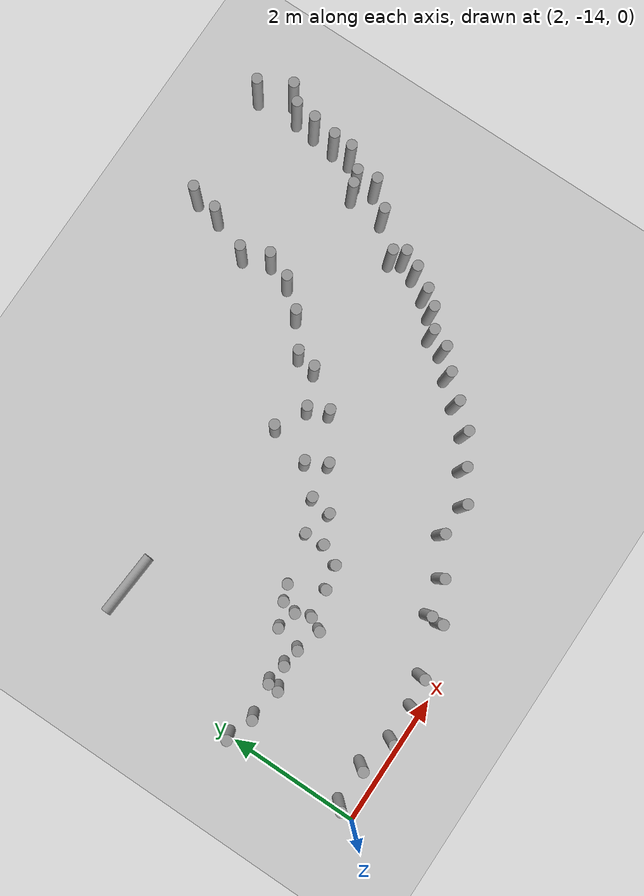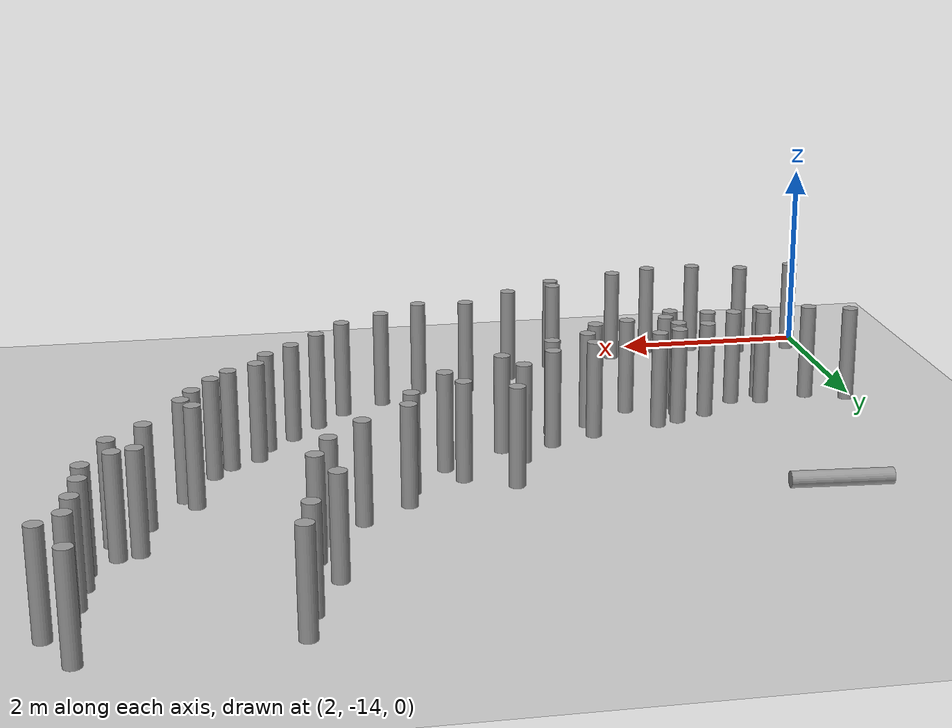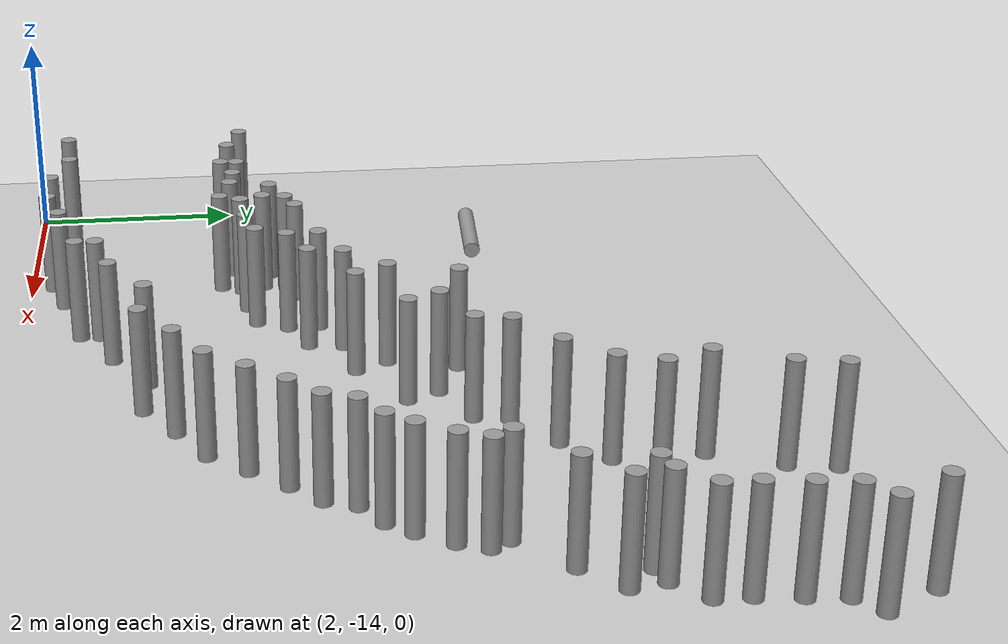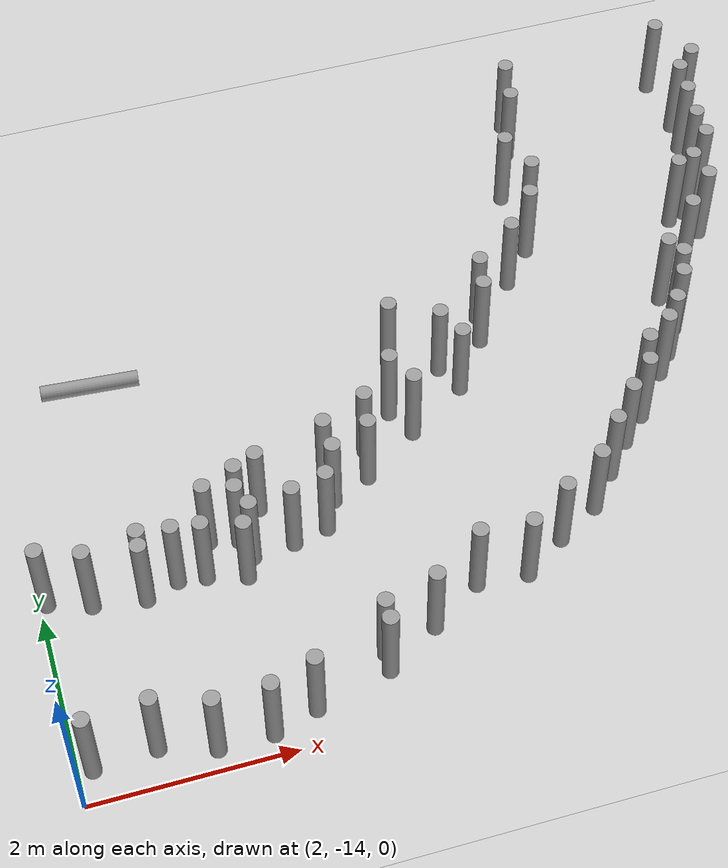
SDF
<sdf version="1.6">
 <world name="default">
  <model name="ground_plane">
   <static>1</static>
   <link name="link">
    <collision name="collision">
     <geometry><plane><normal>0 0 1</normal><size>100 100</size></plane></geometry>
     <surface><friction><ode><mu>100</mu><mu2>50</mu2></ode></friction></surface>
    </collision>
    <visual name="visual">
     <cast_shadows>0</cast_shadows>
     <geometry><plane><normal>0 0 1</normal><size>100 100</size></plane></geometry>
     <material>
      <script><uri>file://media/materials/scripts/gazebo.material</uri><name>Gazebo/Grey</name></script>
     </material>
    </visual>
   </link>
  </model>
  <model name="unit_cylinder_0_clone_clone_26">
   <pose>8.18981 -7.13687 0.49999 0 -0 0.006208</pose>
   <link name="link">
    <inertial>
     <mass>1</mass>
     <inertia><ixx>0.145833</ixx><ixy>0</ixy><ixz>0</ixz><iyy>0.145833</iyy><iyz>0</iyz><izz>0.125</izz></inertia>
    </inertial>
    <collision name="collision">
     <geometry><cylinder><radius>0.0811363</radius><length>1</length></cylinder></geometry>
    </collision>
    <visual name="visual">
     <geometry><cylinder><radius>0.0811363</radius><length>1</length></cylinder></geometry>
     <material>
      <script><name>Gazebo/Grey</name><uri>file://media/materials/scripts/gazebo.material</uri></script>
     </material>
    </visual>
   </link>
  </model>
  <model name="unit_cylinder_0_clone_clone_27">
   <pose>8.10835 -7.5553 0.49999 0 -0 0.006155</pose>
   <link name="link">
    <inertial>
     <mass>1</mass>
     <inertia><ixx>0.145833</ixx><ixy>0</ixy><ixz>0</ixz><iyy>0.145833</iyy><iyz>0</iyz><izz>0.125</izz></inertia>
    </inertial>
    <collision name="collision">
     <geometry><cylinder><radius>0.0811363</radius><length>1</length></cylinder></geometry>
    </collision>
    <visual name="visual">
     <geometry><cylinder><radius>0.0811363</radius><length>1</length></cylinder></geometry>
     <material>
      <script><name>Gazebo/Grey</name><uri>file://media/materials/scripts/gazebo.material</uri></script>
     </material>
    </visual>
   </link>
  </model>
  <model name="unit_cylinder_0_clone_clone_28">
   <pose>7.84183 -8.16999 0.49999 0 -0 0.006186</pose>
   <link name="link">
    <inertial>
     <mass>1</mass>
     <inertia><ixx>0.145833</ixx><ixy>0</ixy><ixz>0</ixz><iyy>0.145833</iyy><iyz>0</iyz><izz>0.125</izz></inertia>
    </inertial>
    <collision name="collision">
     <geometry><cylinder><radius>0.0811363</radius><length>1</length></cylinder></geometry>
    </collision>
    <visual name="visual">
     <geometry><cylinder><radius>0.0811363</radius><length>1</length></cylinder></geometry>
     <material>
      <script><name>Gazebo/Grey</name><uri>file://media/materials/scripts/gazebo.material</uri></script>
     </material>
    </visual>
   </link>
  </model>
  <model name="unit_cylinder_0_clone_clone_29">
   <pose>8.00004 -8.58037 0.499993 0 0 -0.000846</pose>
   <link name="link">
    <inertial>
     <mass>1</mass>
     <inertia><ixx>0.145833</ixx><ixy>0</ixy><ixz>0</ixz><iyy>0.145833</iyy><iyz>0</iyz><izz>0.125</izz></inertia>
    </inertial>
    <collision name="collision">
     <geometry><cylinder><radius>0.0811363</radius><length>1</length></cylinder></geometry>
    </collision>
    <visual name="visual">
     <geometry><cylinder><radius>0.0811363</radius><length>1</length></cylinder></geometry>
     <material>
      <script><name>Gazebo/Grey</name><uri>file://media/materials/scripts/gazebo.material</uri></script>
     </material>
    </visual>
   </link>
  </model>
  <model name="unit_cylinder_0_clone_clone_30">
   <pose>7.85394 -8.96392 0.499995 0 -0 0.002711</pose>
   <link name="link">
    <inertial>
     <mass>1</mass>
     <inertia><ixx>0.145833</ixx><ixy>0</ixy><ixz>0</ixz><iyy>0.145833</iyy><iyz>0</iyz><izz>0.125</izz></inertia>
    </inertial>
    <collision name="collision">
     <geometry><cylinder><radius>0.0811363</radius><length>1</length></cylinder></geometry>
    </collision>
    <visual name="visual">
     <geometry><cylinder><radius>0.0811363</radius><length>1</length></cylinder></geometry>
     <material>
      <script><name>Gazebo/Grey</name><uri>file://media/materials/scripts/gazebo.material</uri></script>
     </material>
    </visual>
   </link>
  </model>
  <model name="unit_cylinder_0_clone_clone_31">
   <pose>7.52159 -9.342 0.49999 0 -0 0.005889</pose>
   <link name="link">
    <inertial>
     <mass>1</mass>
     <inertia><ixx>0.145833</ixx><ixy>0</ixy><ixz>0</ixz><iyy>0.145833</iyy><iyz>0</iyz><izz>0.125</izz></inertia>
    </inertial>
    <collision name="collision">
     <geometry><cylinder><radius>0.0811363</radius><length>1</length></cylinder></geometry>
    </collision>
    <visual name="visual">
     <geometry><cylinder><radius>0.0811363</radius><length>1</length></cylinder></geometry>
     <material>
      <script><name>Gazebo/Grey</name><uri>file://media/materials/scripts/gazebo.material</uri></script>
     </material>
    </visual>
   </link>
  </model>
  <model name="unit_cylinder_0_clone_clone_32">
   <pose>5.98452 -10.9288 0.5 0 -0 0.005995</pose>
   <link name="link">
    <inertial>
     <mass>1</mass>
     <inertia><ixx>0.145833</ixx><ixy>0</ixy><ixz>0</ixz><iyy>0.145833</iyy><iyz>0</iyz><izz>0.125</izz></inertia>
    </inertial>
    <collision name="collision">
     <geometry><cylinder><radius>0.0811363</radius><length>1</length></cylinder></geometry>
    </collision>
    <visual name="visual">
     <geometry><cylinder><radius>0.0811363</radius><length>1</length></cylinder></geometry>
     <material>
      <script><name>Gazebo/Grey</name><uri>file://media/materials/scripts/gazebo.material</uri></script>
     </material>
    </visual>
   </link>
  </model>
  <model name="unit_cylinder_0_clone_clone_33">
   <pose>3.00714 -11.919 0.499993 0 -0 0.003414</pose>
   <link name="link">
    <inertial>
     <mass>1</mass>
     <inertia><ixx>0.145833</ixx><ixy>0</ixy><ixz>0</ixz><iyy>0.145833</iyy><iyz>0</iyz><izz>0.125</izz></inertia>
    </inertial>
    <collision name="collision">
     <geometry><cylinder><radius>0.0811363</radius><length>1</length></cylinder></geometry>
    </collision>
    <visual name="visual">
     <geometry><cylinder><radius>0.0811363</radius><length>1</length></cylinder></geometry>
     <material>
      <script><name>Gazebo/Grey</name><uri>file://media/materials/scripts/gazebo.material</uri></script>
     </material>
    </visual>
   </link>
  </model>
  <model name="unit_cylinder_0_clone_clone_41">
   <pose>7.06387 -9.69066 0.5 0 -0 0.005546</pose>
   <link name="link">
    <inertial>
     <mass>1</mass>
     <inertia><ixx>0.145833</ixx><ixy>0</ixy><ixz>0</ixz><iyy>0.145833</iyy><iyz>0</iyz><izz>0.125</izz></inertia>
    </inertial>
    <collision name="collision">
     <geometry><cylinder><radius>0.0811363</radius><length>1</length></cylinder></geometry>
    </collision>
    <visual name="visual">
     <geometry><cylinder><radius>0.0811363</radius><length>1</length></cylinder></geometry>
     <material>
      <script><name>Gazebo/Grey</name><uri>file://media/materials/scripts/gazebo.material</uri></script>
     </material>
    </visual>
   </link>
  </model>
  <model name="unit_cylinder_0_clone_clone_42">
   <pose>7 -9.99997 0.499996 0 -0 0.00195</pose>
   <link name="link">
    <inertial>
     <mass>1</mass>
     <inertia><ixx>0.145833</ixx><ixy>0</ixy><ixz>0</ixz><iyy>0.145833</iyy><iyz>0</iyz><izz>0.125</izz></inertia>
    </inertial>
    <collision name="collision">
     <geometry><cylinder><radius>0.0811363</radius><length>1</length></cylinder></geometry>
    </collision>
    <visual name="visual">
     <geometry><cylinder><radius>0.0811363</radius><length>1</length></cylinder></geometry>
     <material>
      <script><name>Gazebo/Grey</name><uri>file://media/materials/scripts/gazebo.material</uri></script>
     </material>
    </visual>
   </link>
  </model>
  <model name="unit_cylinder_0_clone_clone_43">
   <pose>6.00003 -9.99999 0.499993 0 0 -0.000515</pose>
   <link name="link">
    <inertial>
     <mass>1</mass>
     <inertia><ixx>0.145833</ixx><ixy>0</ixy><ixz>0</ixz><iyy>0.145833</iyy><iyz>0</iyz><izz>0.125</izz></inertia>
    </inertial>
    <collision name="collision">
     <geometry><cylinder><radius>0.0811363</radius><length>1</length></cylinder></geometry>
    </collision>
    <visual name="visual">
     <geometry><cylinder><radius>0.0811363</radius><length>1</length></cylinder></geometry>
     <material>
      <script><name>Gazebo/Grey</name><uri>file://media/materials/scripts/gazebo.material</uri></script>
     </material>
    </visual>
   </link>
  </model>
  <model name="unit_cylinder_0_clone_clone_44">
   <pose>6.61182 -10.5251 0.499996 0 -0 0.002743</pose>
   <link name="link">
    <inertial>
     <mass>1</mass>
     <inertia><ixx>0.145833</ixx><ixy>0</ixy><ixz>0</ixz><iyy>0.145833</iyy><iyz>0</iyz><izz>0.125</izz></inertia>
    </inertial>
    <collision name="collision">
     <geometry><cylinder><radius>0.0811363</radius><length>1</length></cylinder></geometry>
    </collision>
    <visual name="visual">
     <geometry><cylinder><radius>0.0811363</radius><length>1</length></cylinder></geometry>
     <material>
      <script><name>Gazebo/Grey</name><uri>file://media/materials/scripts/gazebo.material</uri></script>
     </material>
    </visual>
   </link>
  </model>
  <model name="unit_cylinder_0_clone_clone_45">
   <pose>6.47324 -10.2323 0.49999 0 -0 0.005281</pose>
   <link name="link">
    <inertial>
     <mass>1</mass>
     <inertia><ixx>0.145833</ixx><ixy>0</ixy><ixz>0</ixz><iyy>0.145833</iyy><iyz>0</iyz><izz>0.125</izz></inertia>
    </inertial>
    <collision name="collision">
     <geometry><cylinder><radius>0.0811363</radius><length>1</length></cylinder></geometry>
    </collision>
    <visual name="visual">
     <geometry><cylinder><radius>0.0811363</radius><length>1</length></cylinder></geometry>
     <material>
      <script><name>Gazebo/Grey</name><uri>file://media/materials/scripts/gazebo.material</uri></script>
     </material>
    </visual>
   </link>
  </model>
  <model name="unit_cylinder_0_clone_clone_46">
   <pose>5.82302 -10.6278 0.5 0 -0 0.005283</pose>
   <link name="link">
    <inertial>
     <mass>1</mass>
     <inertia><ixx>0.145833</ixx><ixy>0</ixy><ixz>0</ixz><iyy>0.145833</iyy><iyz>0</iyz><izz>0.125</izz></inertia>
    </inertial>
    <collision name="collision">
     <geometry><cylinder><radius>0.0811363</radius><length>1</length></cylinder></geometry>
    </collision>
    <visual name="visual">
     <geometry><cylinder><radius>0.0811363</radius><length>1</length></cylinder></geometry>
     <material>
      <script><name>Gazebo/Grey</name><uri>file://media/materials/scripts/gazebo.material</uri></script>
     </material>
    </visual>
   </link>
  </model>
  <model name="unit_cylinder_0_clone_clone_47">
   <pose>5.45799 -10.9999 0.5 0 -0 0.005037</pose>
   <link name="link">
    <inertial>
     <mass>1</mass>
     <inertia><ixx>0.145833</ixx><ixy>0</ixy><ixz>0</ixz><iyy>0.145833</iyy><iyz>0</iyz><izz>0.125</izz></inertia>
    </inertial>
    <collision name="collision">
     <geometry><cylinder><radius>0.0811363</radius><length>1</length></cylinder></geometry>
    </collision>
    <visual name="visual">
     <geometry><cylinder><radius>0.0811363</radius><length>1</length></cylinder></geometry>
     <material>
      <script><name>Gazebo/Grey</name><uri>file://media/materials/scripts/gazebo.material</uri></script>
     </material>
    </visual>
   </link>
  </model>
  <model name="unit_cylinder_0_clone_clone_48">
   <pose>5.40133 -11.3229 0.49999 0 -0 0.005121</pose>
   <link name="link">
    <inertial>
     <mass>1</mass>
     <inertia><ixx>0.145833</ixx><ixy>0</ixy><ixz>0</ixz><iyy>0.145833</iyy><iyz>0</iyz><izz>0.125</izz></inertia>
    </inertial>
    <collision name="collision">
     <geometry><cylinder><radius>0.0811363</radius><length>1</length></cylinder></geometry>
    </collision>
    <visual name="visual">
     <geometry><cylinder><radius>0.0811363</radius><length>1</length></cylinder></geometry>
     <material>
      <script><name>Gazebo/Grey</name><uri>file://media/materials/scripts/gazebo.material</uri></script>
     </material>
    </visual>
   </link>
  </model>
  <model name="unit_cylinder_0_clone_clone_49">
   <pose>4.99029 -11.1989 0.499993 0 -0 0.002755</pose>
   <link name="link">
    <inertial>
     <mass>1</mass>
     <inertia><ixx>0.145833</ixx><ixy>0</ixy><ixz>0</ixz><iyy>0.145833</iyy><iyz>0</iyz><izz>0.125</izz></inertia>
    </inertial>
    <collision name="collision">
     <geometry><cylinder><radius>0.0811363</radius><length>1</length></cylinder></geometry>
    </collision>
    <visual name="visual">
     <geometry><cylinder><radius>0.0811363</radius><length>1</length></cylinder></geometry>
     <material>
      <script><name>Gazebo/Grey</name><uri>file://media/materials/scripts/gazebo.material</uri></script>
     </material>
    </visual>
   </link>
  </model>
  <model name="unit_cylinder_0_clone_clone_50">
   <pose>5.00002 -11.4951 0.499997 0 -0 0.001776</pose>
   <link name="link">
    <inertial>
     <mass>1</mass>
     <inertia><ixx>0.145833</ixx><ixy>0</ixy><ixz>0</ixz><iyy>0.145833</iyy><iyz>0</iyz><izz>0.125</izz></inertia>
    </inertial>
    <collision name="collision">
     <geometry><cylinder><radius>0.0811363</radius><length>1</length></cylinder></geometry>
    </collision>
    <visual name="visual">
     <geometry><cylinder><radius>0.0811363</radius><length>1</length></cylinder></geometry>
     <material>
      <script><name>Gazebo/Grey</name><uri>file://media/materials/scripts/gazebo.material</uri></script>
     </material>
    </visual>
   </link>
  </model>
  <model name="unit_cylinder_0_clone_clone_51">
   <pose>3.321 -11.9637 0.499997 0 -0 0.003017</pose>
   <link name="link">
    <inertial>
     <mass>1</mass>
     <inertia><ixx>0.145833</ixx><ixy>0</ixy><ixz>0</ixz><iyy>0.145833</iyy><iyz>0</iyz><izz>0.125</izz></inertia>
    </inertial>
    <collision name="collision">
     <geometry><cylinder><radius>0.0811363</radius><length>1</length></cylinder></geometry>
    </collision>
    <visual name="visual">
     <geometry><cylinder><radius>0.0811363</radius><length>1</length></cylinder></geometry>
     <material>
      <script><name>Gazebo/Grey</name><uri>file://media/materials/scripts/gazebo.material</uri></script>
     </material>
    </visual>
   </link>
  </model>
  <model name="unit_cylinder_0_clone_clone_52">
   <pose>2.99309 -12.0807 0.499995 0 -0 0.001645</pose>
   <link name="link">
    <inertial>
     <mass>1</mass>
     <inertia><ixx>0.145833</ixx><ixy>0</ixy><ixz>0</ixz><iyy>0.145833</iyy><iyz>0</iyz><izz>0.125</izz></inertia>
    </inertial>
    <collision name="collision">
     <geometry><cylinder><radius>0.0811363</radius><length>1</length></cylinder></geometry>
    </collision>
    <visual name="visual">
     <geometry><cylinder><radius>0.0811363</radius><length>1</length></cylinder></geometry>
     <material>
      <script><name>Gazebo/Grey</name><uri>file://media/materials/scripts/gazebo.material</uri></script>
     </material>
    </visual>
   </link>
  </model>
  <model name="unit_cylinder_0_clone_clone_53">
   <pose>3.5965 -11.9999 0.49999 0 -0 0.005003</pose>
   <link name="link">
    <inertial>
     <mass>1</mass>
     <inertia><ixx>0.145833</ixx><ixy>0</ixy><ixz>0</ixz><iyy>0.145833</iyy><iyz>0</iyz><izz>0.125</izz></inertia>
    </inertial>
    <collision name="collision">
     <geometry><cylinder><radius>0.0811363</radius><length>1</length></cylinder></geometry>
    </collision>
    <visual name="visual">
     <geometry><cylinder><radius>0.0811363</radius><length>1</length></cylinder></geometry>
     <material>
      <script><name>Gazebo/Grey</name><uri>file://media/materials/scripts/gazebo.material</uri></script>
     </material>
    </visual>
   </link>
  </model>
  <model name="unit_cylinder_0_clone_clone_54">
   <pose>3.70659 -11.6139 0.500745 -0.001533 0.00934 1.94859</pose>
   <link name="link">
    <inertial>
     <mass>1</mass>
     <inertia><ixx>0.145833</ixx><ixy>0</ixy><ixz>0</ixz><iyy>0.145833</iyy><iyz>0</iyz><izz>0.125</izz></inertia>
    </inertial>
    <collision name="collision">
     <geometry><cylinder><radius>0.0811363</radius><length>1</length></cylinder></geometry>
    </collision>
    <visual name="visual">
     <geometry><cylinder><radius>0.0811363</radius><length>1</length></cylinder></geometry>
     <material>
      <script><name>Gazebo/Grey</name><uri>file://media/materials/scripts/gazebo.material</uri></script>
     </material>
    </visual>
   </link>
  </model>
  <model name="unit_cylinder_0_clone_clone_55">
   <pose>2.96637 -9.46984 0.081136 1.5708 -0.619525 1.49835</pose>
   <link name="link">
    <inertial>
     <mass>1</mass>
     <inertia><ixx>0.145833</ixx><ixy>0</ixy><ixz>0</ixz><iyy>0.145833</iyy><iyz>0</iyz><izz>0.125</izz></inertia>
    </inertial>
    <collision name="collision">
     <geometry><cylinder><radius>0.0811363</radius><length>1</length></cylinder></geometry>
    </collision>
    <visual name="visual">
     <geometry><cylinder><radius>0.0811363</radius><length>1</length></cylinder></geometry>
     <material>
      <script><name>Gazebo/Grey</name><uri>file://media/materials/scripts/gazebo.material</uri></script>
     </material>
    </visual>
   </link>
  </model>
  <model name="unit_cylinder_0_clone_clone_56">
   <pose>3.99631 -11.6862 0.499995 0 -0 0.000361</pose>
   <link name="link">
    <inertial>
     <mass>1</mass>
     <inertia><ixx>0.145833</ixx><ixy>0</ixy><ixz>0</ixz><iyy>0.145833</iyy><iyz>0</iyz><izz>0.125</izz></inertia>
    </inertial>
    <collision name="collision">
     <geometry><cylinder><radius>0.0811363</radius><length>1</length></cylinder></geometry>
    </collision>
    <visual name="visual">
     <geometry><cylinder><radius>0.0811363</radius><length>1</length></cylinder></geometry>
     <material>
      <script><name>Gazebo/Grey</name><uri>file://media/materials/scripts/gazebo.material</uri></script>
     </material>
    </visual>
   </link>
  </model>
  <model name="unit_cylinder_0_clone_clone_57">
   <pose>4.04002 -11.4696 0.5 0 -0 0.004905</pose>
   <link name="link">
    <inertial>
     <mass>1</mass>
     <inertia><ixx>0.145833</ixx><ixy>0</ixy><ixz>0</ixz><iyy>0.145833</iyy><iyz>0</iyz><izz>0.125</izz></inertia>
    </inertial>
    <collision name="collision">
     <geometry><cylinder><radius>0.0811363</radius><length>1</length></cylinder></geometry>
    </collision>
    <visual name="visual">
     <geometry><cylinder><radius>0.0811363</radius><length>1</length></cylinder></geometry>
     <material>
      <script><name>Gazebo/Grey</name><uri>file://media/materials/scripts/gazebo.material</uri></script>
     </material>
    </visual>
   </link>
  </model>
  <model name="unit_cylinder_0_clone_clone_58">
   <pose>4.07827 -11.9071 0.49999 0 0 -0.015454</pose>
   <link name="link">
    <inertial>
     <mass>1</mass>
     <inertia><ixx>0.145833</ixx><ixy>0</ixy><ixz>0</ixz><iyy>0.145833</iyy><iyz>0</iyz><izz>0.125</izz></inertia>
    </inertial>
    <collision name="collision">
     <geometry><cylinder><radius>0.0811363</radius><length>1</length></cylinder></geometry>
    </collision>
    <visual name="visual">
     <geometry><cylinder><radius>0.0811363</radius><length>1</length></cylinder></geometry>
     <material>
      <script><name>Gazebo/Grey</name><uri>file://media/materials/scripts/gazebo.material</uri></script>
     </material>
    </visual>
   </link>
  </model>
  <model name="unit_cylinder_0_clone_clone_59">
   <pose>4.27003 -11.3814 0.499996 0 -0 0.003802</pose>
   <link name="link">
    <inertial>
     <mass>1</mass>
     <inertia><ixx>0.145833</ixx><ixy>0</ixy><ixz>0</ixz><iyy>0.145833</iyy><iyz>0</iyz><izz>0.125</izz></inertia>
    </inertial>
    <collision name="collision">
     <geometry><cylinder><radius>0.0811363</radius><length>1</length></cylinder></geometry>
    </collision>
    <visual name="visual">
     <geometry><cylinder><radius>0.0811363</radius><length>1</length></cylinder></geometry>
     <material>
      <script><name>Gazebo/Grey</name><uri>file://media/materials/scripts/gazebo.material</uri></script>
     </material>
    </visual>
   </link>
  </model>
  <model name="unit_cylinder_0_clone_clone_60">
   <pose>3.97813 -12.106 0.5 0 -0 0.037306</pose>
   <link name="link">
    <inertial>
     <mass>1</mass>
     <inertia><ixx>0.145833</ixx><ixy>0</ixy><ixz>0</ixz><iyy>0.145833</iyy><iyz>0</iyz><izz>0.125</izz></inertia>
    </inertial>
    <collision name="collision">
     <geometry><cylinder><radius>0.0811363</radius><length>1</length></cylinder></geometry>
    </collision>
    <visual name="visual">
     <geometry><cylinder><radius>0.0811363</radius><length>1</length></cylinder></geometry>
     <material>
      <script><name>Gazebo/Grey</name><uri>file://media/materials/scripts/gazebo.material</uri></script>
     </material>
    </visual>
   </link>
  </model>
  <model name="unit_cylinder_0_clone_clone_61">
   <pose>4.50174 -11.8652 0.5 0 -0 0.00696</pose>
   <link name="link">
    <inertial>
     <mass>1</mass>
     <inertia><ixx>0.145833</ixx><ixy>0</ixy><ixz>0</ixz><iyy>0.145833</iyy><iyz>0</iyz><izz>0.125</izz></inertia>
    </inertial>
    <collision name="collision">
     <geometry><cylinder><radius>0.0811363</radius><length>1</length></cylinder></geometry>
    </collision>
    <visual name="visual">
     <geometry><cylinder><radius>0.0811363</radius><length>1</length></cylinder></geometry>
     <material>
      <script><name>Gazebo/Grey</name><uri>file://media/materials/scripts/gazebo.material</uri></script>
     </material>
    </visual>
   </link>
  </model>
  <model name="unit_cylinder_0_clone_clone_62">
   <pose>4.85468 -11.787 0.5 0 -0 0.006984</pose>
   <link name="link">
    <inertial>
     <mass>1</mass>
     <inertia><ixx>0.145833</ixx><ixy>0</ixy><ixz>0</ixz><iyy>0.145833</iyy><iyz>0</iyz><izz>0.125</izz></inertia>
    </inertial>
    <collision name="collision">
     <geometry><cylinder><radius>0.0811363</radius><length>1</length></cylinder></geometry>
    </collision>
    <visual name="visual">
     <geometry><cylinder><radius>0.0811363</radius><length>1</length></cylinder></geometry>
     <material>
      <script><name>Gazebo/Grey</name><uri>file://media/materials/scripts/gazebo.material</uri></script>
     </material>
    </visual>
   </link>
  </model>
  <model name="unit_cylinder_0_clone_clone_68">
   <pose>2.068 -11.8686 0.499993 0 -0 0.004302</pose>
   <link name="link">
    <inertial>
     <mass>1</mass>
     <inertia><ixx>0.145833</ixx><ixy>0</ixy><ixz>0</ixz><iyy>0.145833</iyy><iyz>0</iyz><izz>0.125</izz></inertia>
    </inertial>
    <collision name="collision">
     <geometry><cylinder><radius>0.0811363</radius><length>1</length></cylinder></geometry>
    </collision>
    <visual name="visual">
     <geometry><cylinder><radius>0.0811363</radius><length>1</length></cylinder></geometry>
     <material>
      <script><name>Gazebo/Grey</name><uri>file://media/materials/scripts/gazebo.material</uri></script>
     </material>
    </visual>
   </link>
  </model>
  <model name="unit_cylinder_0_clone_clone_69">
   <pose>2.48046 -12.0053 0.499993 0 -0 0.002722</pose>
   <link name="link">
    <inertial>
     <mass>1</mass>
     <inertia><ixx>0.145833</ixx><ixy>0</ixy><ixz>0</ixz><iyy>0.145833</iyy><iyz>0</iyz><izz>0.125</izz></inertia>
    </inertial>
    <collision name="collision">
     <geometry><cylinder><radius>0.0811363</radius><length>1</length></cylinder></geometry>
    </collision>
    <visual name="visual">
     <geometry><cylinder><radius>0.0811363</radius><length>1</length></cylinder></geometry>
     <material>
      <script><name>Gazebo/Grey</name><uri>file://media/materials/scripts/gazebo.material</uri></script>
     </material>
    </visual>
   </link>
  </model>
  <model name="unit_cylinder_0_clone_clone_125">
   <pose>9.95386 -8.37196 0.49999 0 -0 0.005921</pose>
   <link name="link">
    <inertial>
     <mass>1</mass>
     <inertia><ixx>0.145833</ixx><ixy>0</ixy><ixz>0</ixz><iyy>0.145833</iyy><iyz>0</iyz><izz>0.125</izz></inertia>
    </inertial>
    <collision name="collision">
     <geometry><cylinder><radius>0.0811363</radius><length>1</length></cylinder></geometry>
    </collision>
    <visual name="visual">
     <geometry><cylinder><radius>0.0811363</radius><length>1</length></cylinder></geometry>
     <material>
      <script><name>Gazebo/Grey</name><uri>file://media/materials/scripts/gazebo.material</uri></script>
     </material>
    </visual>
   </link>
  </model>
  <model name="unit_cylinder_0_clone_clone_126">
   <pose>7.43656 -12.2937 0.49999 0 -0 0.005891</pose>
   <link name="link">
    <inertial>
     <mass>1</mass>
     <inertia><ixx>0.145833</ixx><ixy>0</ixy><ixz>0</ixz><iyy>0.145833</iyy><iyz>0</iyz><izz>0.125</izz></inertia>
    </inertial>
    <collision name="collision">
     <geometry><cylinder><radius>0.0811363</radius><length>1</length></cylinder></geometry>
    </collision>
    <visual name="visual">
     <geometry><cylinder><radius>0.0811363</radius><length>1</length></cylinder></geometry>
     <material>
      <script><name>Gazebo/Grey</name><uri>file://media/materials/scripts/gazebo.material</uri></script>
     </material>
    </visual>
   </link>
  </model>
  <model name="unit_cylinder_0_clone_clone_127">
   <pose>4.24398 -13.6551 0.5 0 -0 0.005873</pose>
   <link name="link">
    <inertial>
     <mass>1</mass>
     <inertia><ixx>0.145833</ixx><ixy>0</ixy><ixz>0</ixz><iyy>0.145833</iyy><iyz>0</iyz><izz>0.125</izz></inertia>
    </inertial>
    <collision name="collision">
     <geometry><cylinder><radius>0.0811363</radius><length>1</length></cylinder></geometry>
    </collision>
    <visual name="visual">
     <geometry><cylinder><radius>0.0811363</radius><length>1</length></cylinder></geometry>
     <material>
      <script><name>Gazebo/Grey</name><uri>file://media/materials/scripts/gazebo.material</uri></script>
     </material>
    </visual>
   </link>
  </model>
  <model name="unit_cylinder_0_clone_clone_198">
   <pose>10 -6.99999 0.5 0 -0 0.004129</pose>
   <link name="link">
    <inertial>
     <mass>1</mass>
     <inertia><ixx>0.145833</ixx><ixy>0</ixy><ixz>0</ixz><iyy>0.145833</iyy><iyz>0</iyz><izz>0.125</izz></inertia>
    </inertial>
    <collision name="collision">
     <geometry><cylinder><radius>0.0811363</radius><length>1</length></cylinder></geometry>
    </collision>
    <visual name="visual">
     <geometry><cylinder><radius>0.0811363</radius><length>1</length></cylinder></geometry>
     <material>
      <script><name>Gazebo/Grey</name><uri>file://media/materials/scripts/gazebo.material</uri></script>
     </material>
    </visual>
   </link>
  </model>
  <model name="unit_cylinder_0_clone_clone_199">
   <pose>10.2489 -7.47007 0.49999 0 -0 0.004112</pose>
   <link name="link">
    <inertial>
     <mass>1</mass>
     <inertia><ixx>0.145833</ixx><ixy>0</ixy><ixz>0</ixz><iyy>0.145833</iyy><iyz>0</iyz><izz>0.125</izz></inertia>
    </inertial>
    <collision name="collision">
     <geometry><cylinder><radius>0.0811363</radius><length>1</length></cylinder></geometry>
    </collision>
    <visual name="visual">
     <geometry><cylinder><radius>0.0811363</radius><length>1</length></cylinder></geometry>
     <material>
      <script><name>Gazebo/Grey</name><uri>file://media/materials/scripts/gazebo.material</uri></script>
     </material>
    </visual>
   </link>
  </model>
  <model name="unit_cylinder_0_clone_clone_200">
   <pose>10 -7.99999 0.49999 0 -0 0.004098</pose>
   <link name="link">
    <inertial>
     <mass>1</mass>
     <inertia><ixx>0.145833</ixx><ixy>0</ixy><ixz>0</ixz><iyy>0.145833</iyy><iyz>0</iyz><izz>0.125</izz></inertia>
    </inertial>
    <collision name="collision">
     <geometry><cylinder><radius>0.0811363</radius><length>1</length></cylinder></geometry>
    </collision>
    <visual name="visual">
     <geometry><cylinder><radius>0.0811363</radius><length>1</length></cylinder></geometry>
     <material>
      <script><name>Gazebo/Grey</name><uri>file://media/materials/scripts/gazebo.material</uri></script>
     </material>
    </visual>
   </link>
  </model>
  <model name="unit_cylinder_0_clone_clone_201">
   <pose>10.04 -7.66654 0.5 0 -0 0.004065</pose>
   <link name="link">
    <inertial>
     <mass>1</mass>
     <inertia><ixx>0.145833</ixx><ixy>0</ixy><ixz>0</ixz><iyy>0.145833</iyy><iyz>0</iyz><izz>0.125</izz></inertia>
    </inertial>
    <collision name="collision">
     <geometry><cylinder><radius>0.0811363</radius><length>1</length></cylinder></geometry>
    </collision>
    <visual name="visual">
     <geometry><cylinder><radius>0.0811363</radius><length>1</length></cylinder></geometry>
     <material>
      <script><name>Gazebo/Grey</name><uri>file://media/materials/scripts/gazebo.material</uri></script>
     </material>
    </visual>
   </link>
  </model>
  <model name="unit_cylinder_0_clone_clone_202">
   <pose>9.94303 -8.67118 0.49999 0 -0 0.004039</pose>
   <link name="link">
    <inertial>
     <mass>1</mass>
     <inertia><ixx>0.145833</ixx><ixy>0</ixy><ixz>0</ixz><iyy>0.145833</iyy><iyz>0</iyz><izz>0.125</izz></inertia>
    </inertial>
    <collision name="collision">
     <geometry><cylinder><radius>0.0811363</radius><length>1</length></cylinder></geometry>
    </collision>
    <visual name="visual">
     <geometry><cylinder><radius>0.0811363</radius><length>1</length></cylinder></geometry>
     <material>
      <script><name>Gazebo/Grey</name><uri>file://media/materials/scripts/gazebo.material</uri></script>
     </material>
    </visual>
   </link>
  </model>
  <model name="unit_cylinder_0_clone_clone_203">
   <pose>9.69337 -8.93882 0.5 0 -0 0.004023</pose>
   <link name="link">
    <inertial>
     <mass>1</mass>
     <inertia><ixx>0.145833</ixx><ixy>0</ixy><ixz>0</ixz><iyy>0.145833</iyy><iyz>0</iyz><izz>0.125</izz></inertia>
    </inertial>
    <collision name="collision">
     <geometry><cylinder><radius>0.0811363</radius><length>1</length></cylinder></geometry>
    </collision>
    <visual name="visual">
     <geometry><cylinder><radius>0.0811363</radius><length>1</length></cylinder></geometry>
     <material>
      <script><name>Gazebo/Grey</name><uri>file://media/materials/scripts/gazebo.material</uri></script>
     </material>
    </visual>
   </link>
  </model>
  <model name="unit_cylinder_0_clone_clone_204">
   <pose>9.503 -8.99999 0.49999 0 -0 0.004003</pose>
   <link name="link">
    <inertial>
     <mass>1</mass>
     <inertia><ixx>0.145833</ixx><ixy>0</ixy><ixz>0</ixz><iyy>0.145833</iyy><iyz>0</iyz><izz>0.125</izz></inertia>
    </inertial>
    <collision name="collision">
     <geometry><cylinder><radius>0.0811363</radius><length>1</length></cylinder></geometry>
    </collision>
    <visual name="visual">
     <geometry><cylinder><radius>0.0811363</radius><length>1</length></cylinder></geometry>
     <material>
      <script><name>Gazebo/Grey</name><uri>file://media/materials/scripts/gazebo.material</uri></script>
     </material>
    </visual>
   </link>
  </model>
  <model name="unit_cylinder_0_clone_clone_205">
   <pose>9 -9.99999 0.5 0 -0 0.003991</pose>
   <link name="link">
    <inertial>
     <mass>1</mass>
     <inertia><ixx>0.145833</ixx><ixy>0</ixy><ixz>0</ixz><iyy>0.145833</iyy><iyz>0</iyz><izz>0.125</izz></inertia>
    </inertial>
    <collision name="collision">
     <geometry><cylinder><radius>0.0811363</radius><length>1</length></cylinder></geometry>
    </collision>
    <visual name="visual">
     <geometry><cylinder><radius>0.0811363</radius><length>1</length></cylinder></geometry>
     <material>
      <script><name>Gazebo/Grey</name><uri>file://media/materials/scripts/gazebo.material</uri></script>
     </material>
    </visual>
   </link>
  </model>
  <model name="unit_cylinder_0_clone_clone_206">
   <pose>9.43608 -9.57179 0.5 0 -0 0.003976</pose>
   <link name="link">
    <inertial>
     <mass>1</mass>
     <inertia><ixx>0.145833</ixx><ixy>0</ixy><ixz>0</ixz><iyy>0.145833</iyy><iyz>0</iyz><izz>0.125</izz></inertia>
    </inertial>
    <collision name="collision">
     <geometry><cylinder><radius>0.0811363</radius><length>1</length></cylinder></geometry>
    </collision>
    <visual name="visual">
     <geometry><cylinder><radius>0.0811363</radius><length>1</length></cylinder></geometry>
     <material>
      <script><name>Gazebo/Grey</name><uri>file://media/materials/scripts/gazebo.material</uri></script>
     </material>
    </visual>
   </link>
  </model>
  <model name="unit_cylinder_0_clone_clone_207">
   <pose>9.74575 -9.24181 0.499997 0 -0 0.00315</pose>
   <link name="link">
    <inertial>
     <mass>1</mass>
     <inertia><ixx>0.145833</ixx><ixy>0</ixy><ixz>0</ixz><iyy>0.145833</iyy><iyz>0</iyz><izz>0.125</izz></inertia>
    </inertial>
    <collision name="collision">
     <geometry><cylinder><radius>0.0811363</radius><length>1</length></cylinder></geometry>
    </collision>
    <visual name="visual">
     <geometry><cylinder><radius>0.0811363</radius><length>1</length></cylinder></geometry>
     <material>
      <script><name>Gazebo/Grey</name><uri>file://media/materials/scripts/gazebo.material</uri></script>
     </material>
    </visual>
   </link>
  </model>
  <model name="unit_cylinder_0_clone_clone_208">
   <pose>9.10149 -10.1666 0.5 0 -0 0.003922</pose>
   <link name="link">
    <inertial>
     <mass>1</mass>
     <inertia><ixx>0.145833</ixx><ixy>0</ixy><ixz>0</ixz><iyy>0.145833</iyy><iyz>0</iyz><izz>0.125</izz></inertia>
    </inertial>
    <collision name="collision">
     <geometry><cylinder><radius>0.0811363</radius><length>1</length></cylinder></geometry>
    </collision>
    <visual name="visual">
     <geometry><cylinder><radius>0.0811363</radius><length>1</length></cylinder></geometry>
     <material>
      <script><name>Gazebo/Grey</name><uri>file://media/materials/scripts/gazebo.material</uri></script>
     </material>
    </visual>
   </link>
  </model>
  <model name="unit_cylinder_0_clone_clone_209">
   <pose>9 -10.4185 0.5 0 -0 0.003906</pose>
   <link name="link">
    <inertial>
     <mass>1</mass>
     <inertia><ixx>0.145833</ixx><ixy>0</ixy><ixz>0</ixz><iyy>0.145833</iyy><iyz>0</iyz><izz>0.125</izz></inertia>
    </inertial>
    <collision name="collision">
     <geometry><cylinder><radius>0.0811363</radius><length>1</length></cylinder></geometry>
    </collision>
    <visual name="visual">
     <geometry><cylinder><radius>0.0811363</radius><length>1</length></cylinder></geometry>
     <material>
      <script><name>Gazebo/Grey</name><uri>file://media/materials/scripts/gazebo.material</uri></script>
     </material>
    </visual>
   </link>
  </model>
  <model name="unit_cylinder_0_clone_clone_210">
   <pose>8.81647 -10.7167 0.5 0 -0 0.003879</pose>
   <link name="link">
    <inertial>
     <mass>1</mass>
     <inertia><ixx>0.145833</ixx><ixy>0</ixy><ixz>0</ixz><iyy>0.145833</iyy><iyz>0</iyz><izz>0.125</izz></inertia>
    </inertial>
    <collision name="collision">
     <geometry><cylinder><radius>0.0811363</radius><length>1</length></cylinder></geometry>
    </collision>
    <visual name="visual">
     <geometry><cylinder><radius>0.0811363</radius><length>1</length></cylinder></geometry>
     <material>
      <script><name>Gazebo/Grey</name><uri>file://media/materials/scripts/gazebo.material</uri></script>
     </material>
    </visual>
   </link>
  </model>
  <model name="unit_cylinder_0_clone_clone_211">
   <pose>8.64657 -10.9308 0.499995 0 -0 0.003246</pose>
   <link name="link">
    <inertial>
     <mass>1</mass>
     <inertia><ixx>0.145833</ixx><ixy>0</ixy><ixz>0</ixz><iyy>0.145833</iyy><iyz>0</iyz><izz>0.125</izz></inertia>
    </inertial>
    <collision name="collision">
     <geometry><cylinder><radius>0.0811363</radius><length>1</length></cylinder></geometry>
    </collision>
    <visual name="visual">
     <geometry><cylinder><radius>0.0811363</radius><length>1</length></cylinder></geometry>
     <material>
      <script><name>Gazebo/Grey</name><uri>file://media/materials/scripts/gazebo.material</uri></script>
     </material>
    </visual>
   </link>
  </model>
  <model name="unit_cylinder_0_clone_clone_212">
   <pose>8.37147 -11.1122 0.49999 0 -0 0.003816</pose>
   <link name="link">
    <inertial>
     <mass>1</mass>
     <inertia><ixx>0.145833</ixx><ixy>0</ixy><ixz>0</ixz><iyy>0.145833</iyy><iyz>0</iyz><izz>0.125</izz></inertia>
    </inertial>
    <collision name="collision">
     <geometry><cylinder><radius>0.0811363</radius><length>1</length></cylinder></geometry>
    </collision>
    <visual name="visual">
     <geometry><cylinder><radius>0.0811363</radius><length>1</length></cylinder></geometry>
     <material>
      <script><name>Gazebo/Grey</name><uri>file://media/materials/scripts/gazebo.material</uri></script>
     </material>
    </visual>
   </link>
  </model>
  <model name="unit_cylinder_0_clone_clone_213">
   <pose>8.2679 -11.3841 0.499997 0 -0 0.003149</pose>
   <link name="link">
    <inertial>
     <mass>1</mass>
     <inertia><ixx>0.145833</ixx><ixy>0</ixy><ixz>0</ixz><iyy>0.145833</iyy><iyz>0</iyz><izz>0.125</izz></inertia>
    </inertial>
    <collision name="collision">
     <geometry><cylinder><radius>0.0811363</radius><length>1</length></cylinder></geometry>
    </collision>
    <visual name="visual">
     <geometry><cylinder><radius>0.0811363</radius><length>1</length></cylinder></geometry>
     <material>
      <script><name>Gazebo/Grey</name><uri>file://media/materials/scripts/gazebo.material</uri></script>
     </material>
    </visual>
   </link>
  </model>
  <model name="unit_cylinder_0_clone_clone_214">
   <pose>8.00143 -11.6387 0.499997 0 -0 0.003148</pose>
   <link name="link">
    <inertial>
     <mass>1</mass>
     <inertia><ixx>0.145833</ixx><ixy>0</ixy><ixz>0</ixz><iyy>0.145833</iyy><iyz>0</iyz><izz>0.125</izz></inertia>
    </inertial>
    <collision name="collision">
     <geometry><cylinder><radius>0.0811363</radius><length>1</length></cylinder></geometry>
    </collision>
    <visual name="visual">
     <geometry><cylinder><radius>0.0811363</radius><length>1</length></cylinder></geometry>
     <material>
      <script><name>Gazebo/Grey</name><uri>file://media/materials/scripts/gazebo.material</uri></script>
     </material>
    </visual>
   </link>
  </model>
  <model name="unit_cylinder_0_clone_clone_215">
   <pose>7.72382 -11.9564 0.499993 0 -0 0.003146</pose>
   <link name="link">
    <inertial>
     <mass>1</mass>
     <inertia><ixx>0.145833</ixx><ixy>0</ixy><ixz>0</ixz><iyy>0.145833</iyy><iyz>0</iyz><izz>0.125</izz></inertia>
    </inertial>
    <collision name="collision">
     <geometry><cylinder><radius>0.0811363</radius><length>1</length></cylinder></geometry>
    </collision>
    <visual name="visual">
     <geometry><cylinder><radius>0.0811363</radius><length>1</length></cylinder></geometry>
     <material>
      <script><name>Gazebo/Grey</name><uri>file://media/materials/scripts/gazebo.material</uri></script>
     </material>
    </visual>
   </link>
  </model>
  <model name="unit_cylinder_0_clone_clone_216">
   <pose>7 -12.5502 0.499997 0 -0 0.003147</pose>
   <link name="link">
    <inertial>
     <mass>1</mass>
     <inertia><ixx>0.145833</ixx><ixy>0</ixy><ixz>0</ixz><iyy>0.145833</iyy><iyz>0</iyz><izz>0.125</izz></inertia>
    </inertial>
    <collision name="collision">
     <geometry><cylinder><radius>0.0811363</radius><length>1</length></cylinder></geometry>
    </collision>
    <visual name="visual">
     <geometry><cylinder><radius>0.0811363</radius><length>1</length></cylinder></geometry>
     <material>
      <script><name>Gazebo/Grey</name><uri>file://media/materials/scripts/gazebo.material</uri></script>
     </material>
    </visual>
   </link>
  </model>
  <model name="unit_cylinder_0_clone_clone_217">
   <pose>6.05729 -12.8035 0.5 0 -0 0.003736</pose>
   <link name="link">
    <inertial>
     <mass>1</mass>
     <inertia><ixx>0.145833</ixx><ixy>0</ixy><ixz>0</ixz><iyy>0.145833</iyy><iyz>0</iyz><izz>0.125</izz></inertia>
    </inertial>
    <collision name="collision">
     <geometry><cylinder><radius>0.0811363</radius><length>1</length></cylinder></geometry>
    </collision>
    <visual name="visual">
     <geometry><cylinder><radius>0.0811363</radius><length>1</length></cylinder></geometry>
     <material>
      <script><name>Gazebo/Grey</name><uri>file://media/materials/scripts/gazebo.material</uri></script>
     </material>
    </visual>
   </link>
  </model>
  <model name="unit_cylinder_0_clone_clone_218">
   <pose>5.00915 -13.2712 0.5 0 -0 0.003723</pose>
   <link name="link">
    <inertial>
     <mass>1</mass>
     <inertia><ixx>0.145833</ixx><ixy>0</ixy><ixz>0</ixz><iyy>0.145833</iyy><iyz>0</iyz><izz>0.125</izz></inertia>
    </inertial>
    <collision name="collision">
     <geometry><cylinder><radius>0.0811363</radius><length>1</length></cylinder></geometry>
    </collision>
    <visual name="visual">
     <geometry><cylinder><radius>0.0811363</radius><length>1</length></cylinder></geometry>
     <material>
      <script><name>Gazebo/Grey</name><uri>file://media/materials/scripts/gazebo.material</uri></script>
     </material>
    </visual>
   </link>
  </model>
  <model name="unit_cylinder_0_clone_clone_219">
   <pose>5.53613 -13.1352 0.5 0 -0 0.003712</pose>
   <link name="link">
    <inertial>
     <mass>1</mass>
     <inertia><ixx>0.145833</ixx><ixy>0</ixy><ixz>0</ixz><iyy>0.145833</iyy><iyz>0</iyz><izz>0.125</izz></inertia>
    </inertial>
    <collision name="collision">
     <geometry><cylinder><radius>0.0811363</radius><length>1</length></cylinder></geometry>
    </collision>
    <visual name="visual">
     <geometry><cylinder><radius>0.0811363</radius><length>1</length></cylinder></geometry>
     <material>
      <script><name>Gazebo/Grey</name><uri>file://media/materials/scripts/gazebo.material</uri></script>
     </material>
    </visual>
   </link>
  </model>
  <model name="unit_cylinder_0_clone_clone_220">
   <pose>6.56848 -12.8381 0.5 0 -0 0.003703</pose>
   <link name="link">
    <inertial>
     <mass>1</mass>
     <inertia><ixx>0.145833</ixx><ixy>0</ixy><ixz>0</ixz><iyy>0.145833</iyy><iyz>0</iyz><izz>0.125</izz></inertia>
    </inertial>
    <collision name="collision">
     <geometry><cylinder><radius>0.0811363</radius><length>1</length></cylinder></geometry>
    </collision>
    <visual name="visual">
     <geometry><cylinder><radius>0.0811363</radius><length>1</length></cylinder></geometry>
     <material>
      <script><name>Gazebo/Grey</name><uri>file://media/materials/scripts/gazebo.material</uri></script>
     </material>
    </visual>
   </link>
  </model>
  <model name="unit_cylinder_0_clone_clone_221">
   <pose>5 -13.4584 0.499997 0 -0 0.003145</pose>
   <link name="link">
    <inertial>
     <mass>1</mass>
     <inertia><ixx>0.145833</ixx><ixy>0</ixy><ixz>0</ixz><iyy>0.145833</iyy><iyz>0</iyz><izz>0.125</izz></inertia>
    </inertial>
    <collision name="collision">
     <geometry><cylinder><radius>0.0811363</radius><length>1</length></cylinder></geometry>
    </collision>
    <visual name="visual">
     <geometry><cylinder><radius>0.0811363</radius><length>1</length></cylinder></geometry>
     <material>
      <script><name>Gazebo/Grey</name><uri>file://media/materials/scripts/gazebo.material</uri></script>
     </material>
    </visual>
   </link>
  </model>
  <model name="unit_cylinder_0_clone_clone_222">
   <pose>3.806 -13.7905 0.5 0 -0 0.00367</pose>
   <link name="link">
    <inertial>
     <mass>1</mass>
     <inertia><ixx>0.145833</ixx><ixy>0</ixy><ixz>0</ixz><iyy>0.145833</iyy><iyz>0</iyz><izz>0.125</izz></inertia>
    </inertial>
    <collision name="collision">
     <geometry><cylinder><radius>0.0811363</radius><length>1</length></cylinder></geometry>
    </collision>
    <visual name="visual">
     <geometry><cylinder><radius>0.0811363</radius><length>1</length></cylinder></geometry>
     <material>
      <script><name>Gazebo/Grey</name><uri>file://media/materials/scripts/gazebo.material</uri></script>
     </material>
    </visual>
   </link>
  </model>
  <model name="unit_cylinder_0_clone_clone_223">
   <pose>3.27535 -13.7932 0.499996 0 -0 0.003216</pose>
   <link name="link">
    <inertial>
     <mass>1</mass>
     <inertia><ixx>0.145833</ixx><ixy>0</ixy><ixz>0</ixz><iyy>0.145833</iyy><iyz>0</iyz><izz>0.125</izz></inertia>
    </inertial>
    <collision name="collision">
     <geometry><cylinder><radius>0.0811363</radius><length>1</length></cylinder></geometry>
    </collision>
    <visual name="visual">
     <geometry><cylinder><radius>0.0811363</radius><length>1</length></cylinder></geometry>
     <material>
      <script><name>Gazebo/Grey</name><uri>file://media/materials/scripts/gazebo.material</uri></script>
     </material>
    </visual>
   </link>
  </model>
  <model name="unit_cylinder_0_clone_clone_224">
   <pose>2.75147 -13.6346 0.5 0 -0 0.003647</pose>
   <link name="link">
    <inertial>
     <mass>1</mass>
     <inertia><ixx>0.145833</ixx><ixy>0</ixy><ixz>0</ixz><iyy>0.145833</iyy><iyz>0</iyz><izz>0.125</izz></inertia>
    </inertial>
    <collision name="collision">
     <geometry><cylinder><radius>0.0811363</radius><length>1</length></cylinder></geometry>
    </collision>
    <visual name="visual">
     <geometry><cylinder><radius>0.0811363</radius><length>1</length></cylinder></geometry>
     <material>
      <script><name>Gazebo/Grey</name><uri>file://media/materials/scripts/gazebo.material</uri></script>
     </material>
    </visual>
   </link>
  </model>
  <model name="unit_cylinder_0_clone_clone_225">
   <pose>2.14501 -13.6758 0.5 0 -0 0.003633</pose>
   <link name="link">
    <inertial>
     <mass>1</mass>
     <inertia><ixx>0.145833</ixx><ixy>0</ixy><ixz>0</ixz><iyy>0.145833</iyy><iyz>0</iyz><izz>0.125</izz></inertia>
    </inertial>
    <collision name="collision">
     <geometry><cylinder><radius>0.0811363</radius><length>1</length></cylinder></geometry>
    </collision>
    <visual name="visual">
     <geometry><cylinder><radius>0.0811363</radius><length>1</length></cylinder></geometry>
     <material>
      <script><name>Gazebo/Grey</name><uri>file://media/materials/scripts/gazebo.material</uri></script>
     </material>
    </visual>
   </link>
  </model>
 </world>
</sdf>
